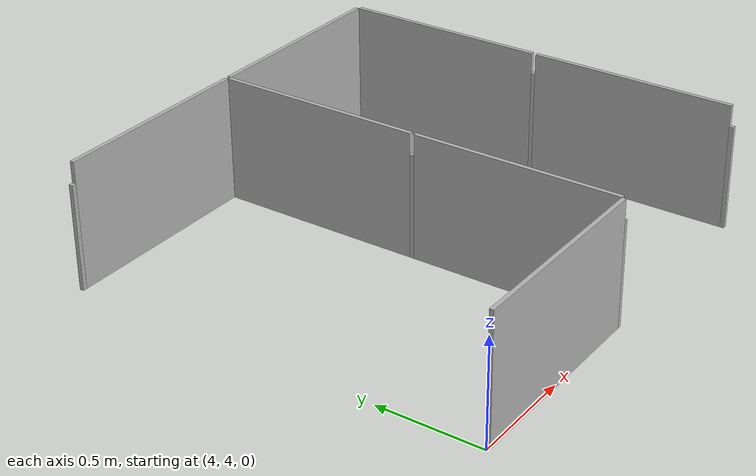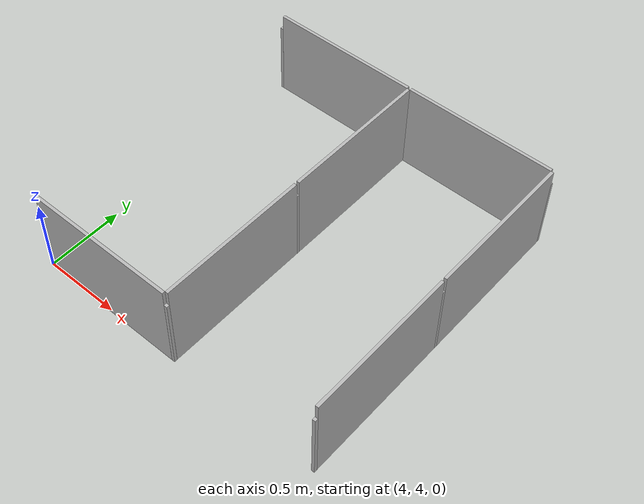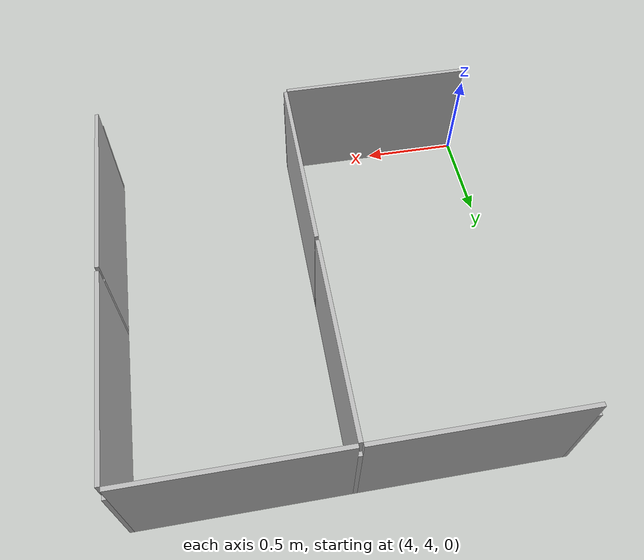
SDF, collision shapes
<sdf version="1.7">
 <model name="maze_midterm_validation">
  <link name="metal_joint_4_6_b::link">
   <pose>4 6 0.25 0 -0 0</pose>
   <visual name="visual_metal_joint_0">
    <geometry><box><size>0.02 0.02 0.5</size></box></geometry>
    <material>
     <script>
      <uri>model://metal_joint/materials/scripts</uri>
      <uri>model://metal_joint/materials/textures</uri>
      <name>metal_joint</name>
     </script>
     <shader type="pixel"/>
    </material>
   </visual>
   <collision name="metal_joint_01">
    <geometry><box><size>0.02 0.02 0.5</size></box></geometry>
    <surface>
     <friction>
      <ode><mu>1</mu><mu2>1</mu2><fdir1>0 0 0</fdir1><slip1>0</slip1><slip2>0</slip2></ode>
      <torsional>
       <coefficient>1</coefficient>
       <patch_radius>0</patch_radius>
       <surface_radius>0</surface_radius>
       <use_patch_radius>1</use_patch_radius>
       <ode><slip>0</slip></ode>
      </torsional>
     </friction>
     <bounce><restitution_coefficient>0</restitution_coefficient><threshold>1e+06</threshold></bounce>
     <contact>
      <collide_without_contact>0</collide_without_contact>
      <collide_without_contact_bitmask>1</collide_without_contact_bitmask>
      <collide_bitmask>1</collide_bitmask>
      <ode>
       <soft_cfm>0</soft_cfm>
       <soft_erp>0.2</soft_erp>
       <kp>1e+13</kp>
       <kd>1</kd>
       <max_vel>0.01</max_vel>
       <min_depth>0</min_depth>
      </ode>
      <bullet>
       <split_impulse>1</split_impulse>
       <split_impulse_penetration_threshold>-0.01</split_impulse_penetration_threshold>
       <soft_cfm>0</soft_cfm>
       <soft_erp>0.2</soft_erp>
       <kp>1e+13</kp>
       <kd>1</kd>
      </bullet>
     </contact>
    </surface>
   </collision>
  </link>
  <link name="metal_joint_5_4::link">
   <pose>5 4 0.25 0 -0 0</pose>
   <visual name="visual_metal_joint_0">
    <geometry><box><size>0.02 0.02 0.5</size></box></geometry>
    <material>
     <script>
      <uri>model://metal_joint/materials/scripts</uri>
      <uri>model://metal_joint/materials/textures</uri>
      <name>metal_joint</name>
     </script>
     <shader type="pixel"/>
    </material>
   </visual>
   <collision name="metal_joint_01">
    <geometry><box><size>0.02 0.02 0.5</size></box></geometry>
    <surface>
     <friction>
      <ode><mu>1</mu><mu2>1</mu2><fdir1>0 0 0</fdir1><slip1>0</slip1><slip2>0</slip2></ode>
      <torsional>
       <coefficient>1</coefficient>
       <patch_radius>0</patch_radius>
       <surface_radius>0</surface_radius>
       <use_patch_radius>1</use_patch_radius>
       <ode><slip>0</slip></ode>
      </torsional>
     </friction>
     <bounce><restitution_coefficient>0</restitution_coefficient><threshold>1e+06</threshold></bounce>
     <contact>
      <collide_without_contact>0</collide_without_contact>
      <collide_without_contact_bitmask>1</collide_without_contact_bitmask>
      <collide_bitmask>1</collide_bitmask>
      <ode>
       <soft_cfm>0</soft_cfm>
       <soft_erp>0.2</soft_erp>
       <kp>1e+13</kp>
       <kd>1</kd>
       <max_vel>0.01</max_vel>
       <min_depth>0</min_depth>
      </ode>
      <bullet>
       <split_impulse>1</split_impulse>
       <split_impulse_penetration_threshold>-0.01</split_impulse_penetration_threshold>
       <soft_cfm>0</soft_cfm>
       <soft_erp>0.2</soft_erp>
       <kp>1e+13</kp>
       <kd>1</kd>
      </bullet>
     </contact>
    </surface>
   </collision>
  </link>
  <link name="metal_joint_5_5::link">
   <pose>5 5 0.25 0 -0 0</pose>
   <visual name="visual_metal_joint_0">
    <geometry><box><size>0.02 0.02 0.5</size></box></geometry>
    <material>
     <script>
      <uri>model://metal_joint/materials/scripts</uri>
      <uri>model://metal_joint/materials/textures</uri>
      <name>metal_joint</name>
     </script>
     <shader type="pixel"/>
    </material>
   </visual>
   <collision name="metal_joint_01">
    <geometry><box><size>0.02 0.02 0.5</size></box></geometry>
    <surface>
     <friction>
      <ode><mu>1</mu><mu2>1</mu2><fdir1>0 0 0</fdir1><slip1>0</slip1><slip2>0</slip2></ode>
      <torsional>
       <coefficient>1</coefficient>
       <patch_radius>0</patch_radius>
       <surface_radius>0</surface_radius>
       <use_patch_radius>1</use_patch_radius>
       <ode><slip>0</slip></ode>
      </torsional>
     </friction>
     <bounce><restitution_coefficient>0</restitution_coefficient><threshold>1e+06</threshold></bounce>
     <contact>
      <collide_without_contact>0</collide_without_contact>
      <collide_without_contact_bitmask>1</collide_without_contact_bitmask>
      <collide_bitmask>1</collide_bitmask>
      <ode>
       <soft_cfm>0</soft_cfm>
       <soft_erp>0.2</soft_erp>
       <kp>1e+13</kp>
       <kd>1</kd>
       <max_vel>0.01</max_vel>
       <min_depth>0</min_depth>
      </ode>
      <bullet>
       <split_impulse>1</split_impulse>
       <split_impulse_penetration_threshold>-0.01</split_impulse_penetration_threshold>
       <soft_cfm>0</soft_cfm>
       <soft_erp>0.2</soft_erp>
       <kp>1e+13</kp>
       <kd>1</kd>
      </bullet>
     </contact>
    </surface>
   </collision>
  </link>
  <link name="metal_joint_5_6_b::link">
   <pose>5 6 0.25 0 -0 0</pose>
   <visual name="visual_metal_joint_0">
    <geometry><box><size>0.02 0.02 0.5</size></box></geometry>
    <material>
     <script>
      <uri>model://metal_joint/materials/scripts</uri>
      <uri>model://metal_joint/materials/textures</uri>
      <name>metal_joint</name>
     </script>
     <shader type="pixel"/>
    </material>
   </visual>
   <collision name="metal_joint_01">
    <geometry><box><size>0.02 0.02 0.5</size></box></geometry>
    <surface>
     <friction>
      <ode><mu>1</mu><mu2>1</mu2><fdir1>0 0 0</fdir1><slip1>0</slip1><slip2>0</slip2></ode>
      <torsional>
       <coefficient>1</coefficient>
       <patch_radius>0</patch_radius>
       <surface_radius>0</surface_radius>
       <use_patch_radius>1</use_patch_radius>
       <ode><slip>0</slip></ode>
      </torsional>
     </friction>
     <bounce><restitution_coefficient>0</restitution_coefficient><threshold>1e+06</threshold></bounce>
     <contact>
      <collide_without_contact>0</collide_without_contact>
      <collide_without_contact_bitmask>1</collide_without_contact_bitmask>
      <collide_bitmask>1</collide_bitmask>
      <ode>
       <soft_cfm>0</soft_cfm>
       <soft_erp>0.2</soft_erp>
       <kp>1e+13</kp>
       <kd>1</kd>
       <max_vel>0.01</max_vel>
       <min_depth>0</min_depth>
      </ode>
      <bullet>
       <split_impulse>1</split_impulse>
       <split_impulse_penetration_threshold>-0.01</split_impulse_penetration_threshold>
       <soft_cfm>0</soft_cfm>
       <soft_erp>0.2</soft_erp>
       <kp>1e+13</kp>
       <kd>1</kd>
      </bullet>
     </contact>
    </surface>
   </collision>
  </link>
  <link name="metal_joint_6_4_a::link">
   <pose>6 4 0.25 0 -0 0</pose>
   <visual name="visual_metal_joint_0">
    <geometry><box><size>0.02 0.02 0.5</size></box></geometry>
    <material>
     <script>
      <uri>model://metal_joint/materials/scripts</uri>
      <uri>model://metal_joint/materials/textures</uri>
      <name>metal_joint</name>
     </script>
     <shader type="pixel"/>
    </material>
   </visual>
   <collision name="metal_joint_01">
    <geometry><box><size>0.02 0.02 0.5</size></box></geometry>
    <surface>
     <friction>
      <ode><mu>1</mu><mu2>1</mu2><fdir1>0 0 0</fdir1><slip1>0</slip1><slip2>0</slip2></ode>
      <torsional>
       <coefficient>1</coefficient>
       <patch_radius>0</patch_radius>
       <surface_radius>0</surface_radius>
       <use_patch_radius>1</use_patch_radius>
       <ode><slip>0</slip></ode>
      </torsional>
     </friction>
     <bounce><restitution_coefficient>0</restitution_coefficient><threshold>1e+06</threshold></bounce>
     <contact>
      <collide_without_contact>0</collide_without_contact>
      <collide_without_contact_bitmask>1</collide_without_contact_bitmask>
      <collide_bitmask>1</collide_bitmask>
      <ode>
       <soft_cfm>0</soft_cfm>
       <soft_erp>0.2</soft_erp>
       <kp>1e+13</kp>
       <kd>1</kd>
       <max_vel>0.01</max_vel>
       <min_depth>0</min_depth>
      </ode>
      <bullet>
       <split_impulse>1</split_impulse>
       <split_impulse_penetration_threshold>-0.01</split_impulse_penetration_threshold>
       <soft_cfm>0</soft_cfm>
       <soft_erp>0.2</soft_erp>
       <kp>1e+13</kp>
       <kd>1</kd>
      </bullet>
     </contact>
    </surface>
   </collision>
  </link>
  <link name="metal_joint_6_5_a::link">
   <pose>6 5 0.25 0 -0 0</pose>
   <visual name="visual_metal_joint_0">
    <geometry><box><size>0.02 0.02 0.5</size></box></geometry>
    <material>
     <script>
      <uri>model://metal_joint/materials/scripts</uri>
      <uri>model://metal_joint/materials/textures</uri>
      <name>metal_joint</name>
     </script>
     <shader type="pixel"/>
    </material>
   </visual>
   <collision name="metal_joint_01">
    <geometry><box><size>0.02 0.02 0.5</size></box></geometry>
    <surface>
     <friction>
      <ode><mu>1</mu><mu2>1</mu2><fdir1>0 0 0</fdir1><slip1>0</slip1><slip2>0</slip2></ode>
      <torsional>
       <coefficient>1</coefficient>
       <patch_radius>0</patch_radius>
       <surface_radius>0</surface_radius>
       <use_patch_radius>1</use_patch_radius>
       <ode><slip>0</slip></ode>
      </torsional>
     </friction>
     <bounce><restitution_coefficient>0</restitution_coefficient><threshold>1e+06</threshold></bounce>
     <contact>
      <collide_without_contact>0</collide_without_contact>
      <collide_without_contact_bitmask>1</collide_without_contact_bitmask>
      <collide_bitmask>1</collide_bitmask>
      <ode>
       <soft_cfm>0</soft_cfm>
       <soft_erp>0.2</soft_erp>
       <kp>1e+13</kp>
       <kd>1</kd>
       <max_vel>0.01</max_vel>
       <min_depth>0</min_depth>
      </ode>
      <bullet>
       <split_impulse>1</split_impulse>
       <split_impulse_penetration_threshold>-0.01</split_impulse_penetration_threshold>
       <soft_cfm>0</soft_cfm>
       <soft_erp>0.2</soft_erp>
       <kp>1e+13</kp>
       <kd>1</kd>
      </bullet>
     </contact>
    </surface>
   </collision>
  </link>
  <link name="metal_joint_6_6_a::link">
   <pose>6 6 0.25 0 -0 0</pose>
   <visual name="visual_metal_joint_0">
    <geometry><box><size>0.02 0.02 0.5</size></box></geometry>
    <material>
     <script>
      <uri>model://metal_joint/materials/scripts</uri>
      <uri>model://metal_joint/materials/textures</uri>
      <name>metal_joint</name>
     </script>
     <shader type="pixel"/>
    </material>
   </visual>
   <collision name="metal_joint_01">
    <geometry><box><size>0.02 0.02 0.5</size></box></geometry>
    <surface>
     <friction>
      <ode><mu>1</mu><mu2>1</mu2><fdir1>0 0 0</fdir1><slip1>0</slip1><slip2>0</slip2></ode>
      <torsional>
       <coefficient>1</coefficient>
       <patch_radius>0</patch_radius>
       <surface_radius>0</surface_radius>
       <use_patch_radius>1</use_patch_radius>
       <ode><slip>0</slip></ode>
      </torsional>
     </friction>
     <bounce><restitution_coefficient>0</restitution_coefficient><threshold>1e+06</threshold></bounce>
     <contact>
      <collide_without_contact>0</collide_without_contact>
      <collide_without_contact_bitmask>1</collide_without_contact_bitmask>
      <collide_bitmask>1</collide_bitmask>
      <ode>
       <soft_cfm>0</soft_cfm>
       <soft_erp>0.2</soft_erp>
       <kp>1e+13</kp>
       <kd>1</kd>
       <max_vel>0.01</max_vel>
       <min_depth>0</min_depth>
      </ode>
      <bullet>
       <split_impulse>1</split_impulse>
       <split_impulse_penetration_threshold>-0.01</split_impulse_penetration_threshold>
       <soft_cfm>0</soft_cfm>
       <soft_erp>0.2</soft_erp>
       <kp>1e+13</kp>
       <kd>1</kd>
      </bullet>
     </contact>
    </surface>
   </collision>
  </link>
  <link name="metal_plate_4_6_b::main">
   <pose>4 6 0 0 -0 1.571</pose>
   <visual name="visual">
    <pose>0.01 -0.01 0 3.14159 -1.57059 3.14159</pose>
    <geometry><mesh><scale>1 1 1</scale><uri>model://metal_plate/meshes/metal_plate.dae</uri></mesh></geometry>
    <material><shader type="pixel"/></material>
   </visual>
   <collision name="collision">
    <pose>0 -0.5 0.3 -1.571 -0 -1.571</pose>
    <geometry><box><size>0.98 0.6 0.02</size></box></geometry>
    <surface>
     <friction>
      <ode><mu>1</mu><mu2>1</mu2><fdir1>0 0 0</fdir1><slip1>0</slip1><slip2>0</slip2></ode>
      <torsional>
       <coefficient>1</coefficient>
       <patch_radius>0</patch_radius>
       <surface_radius>0</surface_radius>
       <use_patch_radius>1</use_patch_radius>
       <ode><slip>0</slip></ode>
      </torsional>
     </friction>
     <bounce><restitution_coefficient>0</restitution_coefficient><threshold>1e+06</threshold></bounce>
     <contact>
      <collide_without_contact>0</collide_without_contact>
      <collide_without_contact_bitmask>1</collide_without_contact_bitmask>
      <collide_bitmask>1</collide_bitmask>
      <ode>
       <soft_cfm>0</soft_cfm>
       <soft_erp>0.2</soft_erp>
       <kp>1e+13</kp>
       <kd>1</kd>
       <max_vel>0.01</max_vel>
       <min_depth>0</min_depth>
      </ode>
      <bullet>
       <split_impulse>1</split_impulse>
       <split_impulse_penetration_threshold>-0.01</split_impulse_penetration_threshold>
       <soft_cfm>0</soft_cfm>
       <soft_erp>0.2</soft_erp>
       <kp>1e+13</kp>
       <kd>1</kd>
      </bullet>
     </contact>
    </surface>
   </collision>
  </link>
  <link name="metal_plate_5_4_c::main">
   <pose>5 4 0 0 0 -1.5708</pose>
   <visual name="visual">
    <pose>0.01 -0.01 0 3.14159 -1.57059 3.14159</pose>
    <geometry><mesh><scale>1 1 1</scale><uri>model://metal_plate/meshes/metal_plate.dae</uri></mesh></geometry>
    <material><shader type="pixel"/></material>
   </visual>
   <collision name="collision">
    <pose>0 -0.5 0.3 -1.571 -0 -1.571</pose>
    <geometry><box><size>0.98 0.6 0.02</size></box></geometry>
    <surface>
     <friction>
      <ode><mu>1</mu><mu2>1</mu2><fdir1>0 0 0</fdir1><slip1>0</slip1><slip2>0</slip2></ode>
      <torsional>
       <coefficient>1</coefficient>
       <patch_radius>0</patch_radius>
       <surface_radius>0</surface_radius>
       <use_patch_radius>1</use_patch_radius>
       <ode><slip>0</slip></ode>
      </torsional>
     </friction>
     <bounce><restitution_coefficient>0</restitution_coefficient><threshold>1e+06</threshold></bounce>
     <contact>
      <collide_without_contact>0</collide_without_contact>
      <collide_without_contact_bitmask>1</collide_without_contact_bitmask>
      <collide_bitmask>1</collide_bitmask>
      <ode>
       <soft_cfm>0</soft_cfm>
       <soft_erp>0.2</soft_erp>
       <kp>1e+13</kp>
       <kd>1</kd>
       <max_vel>0.01</max_vel>
       <min_depth>0</min_depth>
      </ode>
      <bullet>
       <split_impulse>1</split_impulse>
       <split_impulse_penetration_threshold>-0.01</split_impulse_penetration_threshold>
       <soft_cfm>0</soft_cfm>
       <soft_erp>0.2</soft_erp>
       <kp>1e+13</kp>
       <kd>1</kd>
      </bullet>
     </contact>
    </surface>
   </collision>
  </link>
  <link name="metal_plate_5_5_a::main">
   <pose>5 5 0 0 -0 0</pose>
   <visual name="visual">
    <pose>0.01 -0.01 0 3.14159 -1.57059 3.14159</pose>
    <geometry><mesh><scale>1 1 1</scale><uri>model://metal_plate/meshes/metal_plate.dae</uri></mesh></geometry>
    <material><shader type="pixel"/></material>
   </visual>
   <collision name="collision">
    <pose>0 -0.5 0.3 -1.571 -0 -1.571</pose>
    <geometry><box><size>0.98 0.6 0.02</size></box></geometry>
    <surface>
     <friction>
      <ode><mu>1</mu><mu2>1</mu2><fdir1>0 0 0</fdir1><slip1>0</slip1><slip2>0</slip2></ode>
      <torsional>
       <coefficient>1</coefficient>
       <patch_radius>0</patch_radius>
       <surface_radius>0</surface_radius>
       <use_patch_radius>1</use_patch_radius>
       <ode><slip>0</slip></ode>
      </torsional>
     </friction>
     <bounce><restitution_coefficient>0</restitution_coefficient><threshold>1e+06</threshold></bounce>
     <contact>
      <collide_without_contact>0</collide_without_contact>
      <collide_without_contact_bitmask>1</collide_without_contact_bitmask>
      <collide_bitmask>1</collide_bitmask>
      <ode>
       <soft_cfm>0</soft_cfm>
       <soft_erp>0.2</soft_erp>
       <kp>1e+13</kp>
       <kd>1</kd>
       <max_vel>0.01</max_vel>
       <min_depth>0</min_depth>
      </ode>
      <bullet>
       <split_impulse>1</split_impulse>
       <split_impulse_penetration_threshold>-0.01</split_impulse_penetration_threshold>
       <soft_cfm>0</soft_cfm>
       <soft_erp>0.2</soft_erp>
       <kp>1e+13</kp>
       <kd>1</kd>
      </bullet>
     </contact>
    </surface>
   </collision>
  </link>
  <link name="metal_plate_5_6_a::main">
   <pose>5 6 0 0 -0 0</pose>
   <visual name="visual">
    <pose>0.01 -0.01 0 3.14159 -1.57059 3.14159</pose>
    <geometry><mesh><scale>1 1 1</scale><uri>model://metal_plate/meshes/metal_plate.dae</uri></mesh></geometry>
    <material><shader type="pixel"/></material>
   </visual>
   <collision name="collision">
    <pose>0 -0.5 0.3 -1.571 -0 -1.571</pose>
    <geometry><box><size>0.98 0.6 0.02</size></box></geometry>
    <surface>
     <friction>
      <ode><mu>1</mu><mu2>1</mu2><fdir1>0 0 0</fdir1><slip1>0</slip1><slip2>0</slip2></ode>
      <torsional>
       <coefficient>1</coefficient>
       <patch_radius>0</patch_radius>
       <surface_radius>0</surface_radius>
       <use_patch_radius>1</use_patch_radius>
       <ode><slip>0</slip></ode>
      </torsional>
     </friction>
     <bounce><restitution_coefficient>0</restitution_coefficient><threshold>1e+06</threshold></bounce>
     <contact>
      <collide_without_contact>0</collide_without_contact>
      <collide_without_contact_bitmask>1</collide_without_contact_bitmask>
      <collide_bitmask>1</collide_bitmask>
      <ode>
       <soft_cfm>0</soft_cfm>
       <soft_erp>0.2</soft_erp>
       <kp>1e+13</kp>
       <kd>1</kd>
       <max_vel>0.01</max_vel>
       <min_depth>0</min_depth>
      </ode>
      <bullet>
       <split_impulse>1</split_impulse>
       <split_impulse_penetration_threshold>-0.01</split_impulse_penetration_threshold>
       <soft_cfm>0</soft_cfm>
       <soft_erp>0.2</soft_erp>
       <kp>1e+13</kp>
       <kd>1</kd>
      </bullet>
     </contact>
    </surface>
   </collision>
  </link>
  <link name="metal_plate_5_6_b::main">
   <pose>5 6 0 0 -0 1.571</pose>
   <visual name="visual">
    <pose>0.01 -0.01 0 3.14159 -1.57059 3.14159</pose>
    <geometry><mesh><scale>1 1 1</scale><uri>model://metal_plate/meshes/metal_plate.dae</uri></mesh></geometry>
    <material><shader type="pixel"/></material>
   </visual>
   <collision name="collision">
    <pose>0 -0.5 0.3 -1.571 -0 -1.571</pose>
    <geometry><box><size>0.98 0.6 0.02</size></box></geometry>
    <surface>
     <friction>
      <ode><mu>1</mu><mu2>1</mu2><fdir1>0 0 0</fdir1><slip1>0</slip1><slip2>0</slip2></ode>
      <torsional>
       <coefficient>1</coefficient>
       <patch_radius>0</patch_radius>
       <surface_radius>0</surface_radius>
       <use_patch_radius>1</use_patch_radius>
       <ode><slip>0</slip></ode>
      </torsional>
     </friction>
     <bounce><restitution_coefficient>0</restitution_coefficient><threshold>1e+06</threshold></bounce>
     <contact>
      <collide_without_contact>0</collide_without_contact>
      <collide_without_contact_bitmask>1</collide_without_contact_bitmask>
      <collide_bitmask>1</collide_bitmask>
      <ode>
       <soft_cfm>0</soft_cfm>
       <soft_erp>0.2</soft_erp>
       <kp>1e+13</kp>
       <kd>1</kd>
       <max_vel>0.01</max_vel>
       <min_depth>0</min_depth>
      </ode>
      <bullet>
       <split_impulse>1</split_impulse>
       <split_impulse_penetration_threshold>-0.01</split_impulse_penetration_threshold>
       <soft_cfm>0</soft_cfm>
       <soft_erp>0.2</soft_erp>
       <kp>1e+13</kp>
       <kd>1</kd>
      </bullet>
     </contact>
    </surface>
   </collision>
  </link>
  <link name="metal_plate_6_4_a::main">
   <pose>6 4 0 0 -0 3.14159</pose>
   <visual name="visual">
    <pose>0.01 -0.01 0 3.14159 -1.57059 3.14159</pose>
    <geometry><mesh><scale>1 1 1</scale><uri>model://metal_plate/meshes/metal_plate.dae</uri></mesh></geometry>
    <material><shader type="pixel"/></material>
   </visual>
   <collision name="collision">
    <pose>0 -0.5 0.3 -1.571 -0 -1.571</pose>
    <geometry><box><size>0.98 0.6 0.02</size></box></geometry>
    <surface>
     <friction>
      <ode><mu>1</mu><mu2>1</mu2><fdir1>0 0 0</fdir1><slip1>0</slip1><slip2>0</slip2></ode>
      <torsional>
       <coefficient>1</coefficient>
       <patch_radius>0</patch_radius>
       <surface_radius>0</surface_radius>
       <use_patch_radius>1</use_patch_radius>
       <ode><slip>0</slip></ode>
      </torsional>
     </friction>
     <bounce><restitution_coefficient>0</restitution_coefficient><threshold>1e+06</threshold></bounce>
     <contact>
      <collide_without_contact>0</collide_without_contact>
      <collide_without_contact_bitmask>1</collide_without_contact_bitmask>
      <collide_bitmask>1</collide_bitmask>
      <ode>
       <soft_cfm>0</soft_cfm>
       <soft_erp>0.2</soft_erp>
       <kp>1e+13</kp>
       <kd>1</kd>
       <max_vel>0.01</max_vel>
       <min_depth>0</min_depth>
      </ode>
      <bullet>
       <split_impulse>1</split_impulse>
       <split_impulse_penetration_threshold>-0.01</split_impulse_penetration_threshold>
       <soft_cfm>0</soft_cfm>
       <soft_erp>0.2</soft_erp>
       <kp>1e+13</kp>
       <kd>1</kd>
      </bullet>
     </contact>
    </surface>
   </collision>
  </link>
  <link name="metal_plate_6_5_a::main">
   <pose>6 5 0 0 -0 3.14159</pose>
   <visual name="visual">
    <pose>0.01 -0.01 0 3.14159 -1.57059 3.14159</pose>
    <geometry><mesh><scale>1 1 1</scale><uri>model://metal_plate/meshes/metal_plate.dae</uri></mesh></geometry>
    <material><shader type="pixel"/></material>
   </visual>
   <collision name="collision">
    <pose>0 -0.5 0.3 -1.571 -0 -1.571</pose>
    <geometry><box><size>0.98 0.6 0.02</size></box></geometry>
    <surface>
     <friction>
      <ode><mu>1</mu><mu2>1</mu2><fdir1>0 0 0</fdir1><slip1>0</slip1><slip2>0</slip2></ode>
      <torsional>
       <coefficient>1</coefficient>
       <patch_radius>0</patch_radius>
       <surface_radius>0</surface_radius>
       <use_patch_radius>1</use_patch_radius>
       <ode><slip>0</slip></ode>
      </torsional>
     </friction>
     <bounce><restitution_coefficient>0</restitution_coefficient><threshold>1e+06</threshold></bounce>
     <contact>
      <collide_without_contact>0</collide_without_contact>
      <collide_without_contact_bitmask>1</collide_without_contact_bitmask>
      <collide_bitmask>1</collide_bitmask>
      <ode>
       <soft_cfm>0</soft_cfm>
       <soft_erp>0.2</soft_erp>
       <kp>1e+13</kp>
       <kd>1</kd>
       <max_vel>0.01</max_vel>
       <min_depth>0</min_depth>
      </ode>
      <bullet>
       <split_impulse>1</split_impulse>
       <split_impulse_penetration_threshold>-0.01</split_impulse_penetration_threshold>
       <soft_cfm>0</soft_cfm>
       <soft_erp>0.2</soft_erp>
       <kp>1e+13</kp>
       <kd>1</kd>
      </bullet>
     </contact>
    </surface>
   </collision>
  </link>
  <static>1</static>
 </model>
</sdf>
